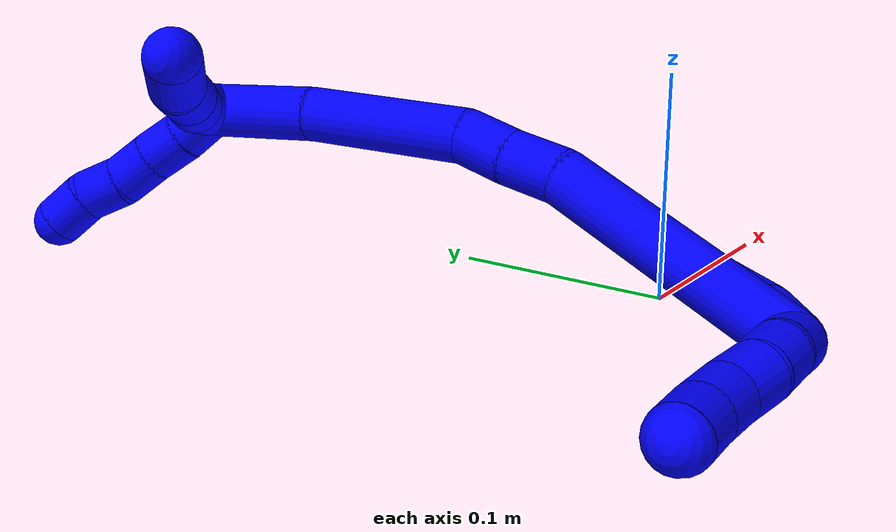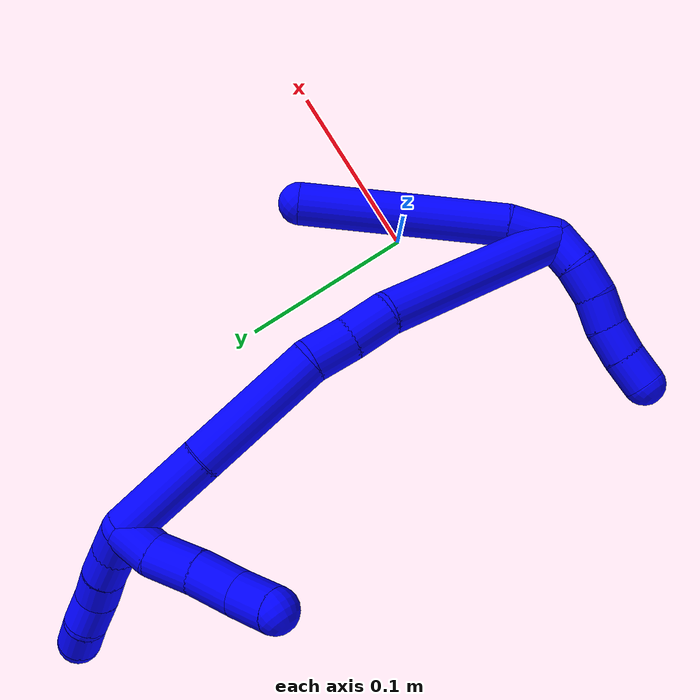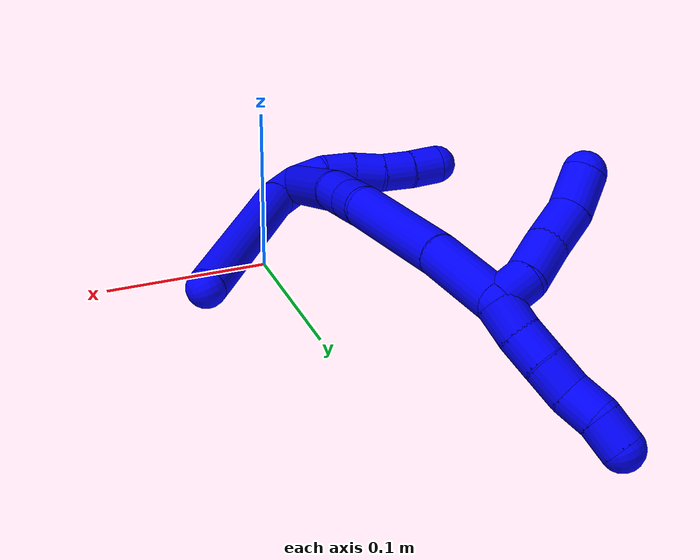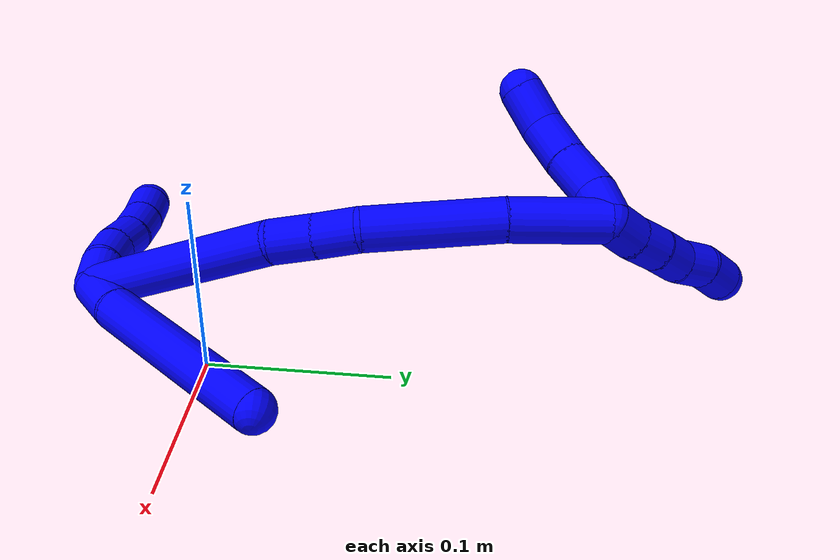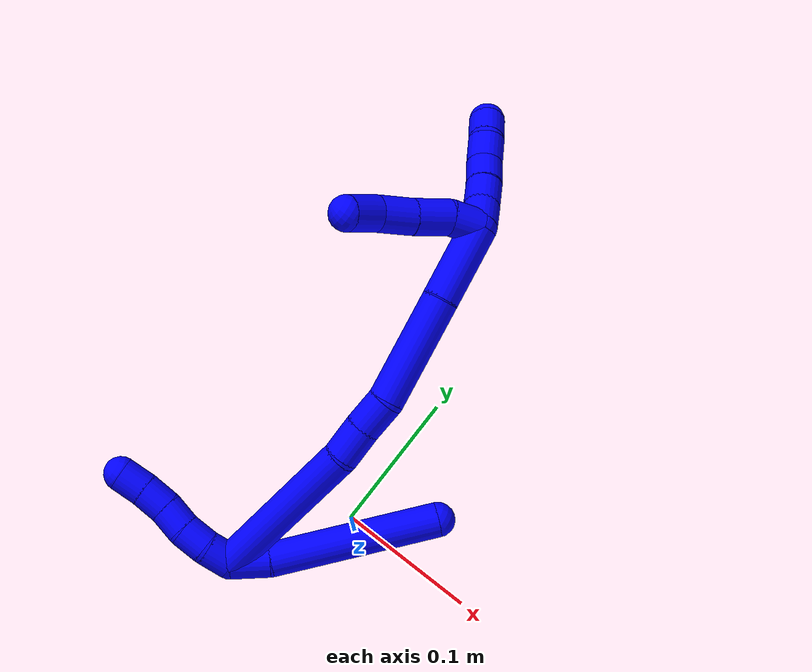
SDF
<sdf version="1.7">
 <world name="default">
  <model name="1">
   <static>0</static>
   <link name="1">
    <collision name="collision-cylinder-e_1_2_8">
     <pose>-0.001656 0.008867 0.011129 -0.672753 -0.115869 0.040555</pose>
     <geometry><cylinder><radius>0.0125</radius><length>0.028652</length></cylinder></geometry>
     <surface>
      <friction><ode><mu>1.16</mu><mu2>1.16</mu2><slip1>0</slip1><slip2>0</slip2></ode></friction>
      <contact><ode><kp>1e+06</kp><kd>1</kd><max_vel>0</max_vel><min_depth>0.001</min_depth></ode></contact>
     </surface>
    </collision>
    <visual name="visual-cylinder-e_1_2_8">
     <pose>-0.001656 0.008867 0.011129 -0.672753 -0.115869 0.040555</pose>
     <geometry><cylinder><radius>0.0125</radius><length>0.028652</length></cylinder></geometry>
     <material><ambient>0 0 1 1</ambient></material>
    </visual>
    <collision name="collision-cylinder-e_2_8_6">
     <pose>-0.005023 0.062824 0.062822 -0.838196 -0.028199 0.012563</pose>
     <geometry><cylinder><radius>0.0125</radius><length>0.121348</length></cylinder></geometry>
     <surface>
      <friction><ode><mu>1.16</mu><mu2>1.16</mu2><slip1>0</slip1><slip2>0</slip2></ode></friction>
      <contact><ode><kp>1e+06</kp><kd>1</kd><max_vel>0</max_vel><min_depth>0.001</min_depth></ode></contact>
     </surface>
    </collision>
    <visual name="visual-cylinder-e_2_8_6">
     <pose>-0.005023 0.062824 0.062822 -0.838196 -0.028199 0.012563</pose>
     <geometry><cylinder><radius>0.0125</radius><length>0.121348</length></cylinder></geometry>
     <material><ambient>0 0 1 1</ambient></material>
    </visual>
    <collision name="collision-cylinder-e_1_2_9">
     <pose>0.000923 -0.000393 -0.00995 3.10207 0.092385 2.33346</pose>
     <geometry><cylinder><radius>0.0125</radius><length>0.02</length></cylinder></geometry>
     <surface>
      <friction><ode><mu>1.16</mu><mu2>1.16</mu2><slip1>0</slip1><slip2>0</slip2></ode></friction>
      <contact><ode><kp>1e+06</kp><kd>1</kd><max_vel>0</max_vel><min_depth>0.001</min_depth></ode></contact>
     </surface>
    </collision>
    <visual name="visual-cylinder-e_1_2_9">
     <pose>0.000923 -0.000393 -0.00995 3.10207 0.092385 2.33346</pose>
     <geometry><cylinder><radius>0.0125</radius><length>0.02</length></cylinder></geometry>
     <material><ambient>0 0 1 1</ambient></material>
    </visual>
    <collision name="collision-cylinder-e_2_9_10">
     <pose>0.004962 -0.000444 -0.029395 -3.1055 0.316945 -2.91666</pose>
     <geometry><cylinder><radius>0.0125</radius><length>0.02</length></cylinder></geometry>
     <surface>
      <friction><ode><mu>1.16</mu><mu2>1.16</mu2><slip1>0</slip1><slip2>0</slip2></ode></friction>
      <contact><ode><kp>1e+06</kp><kd>1</kd><max_vel>0</max_vel><min_depth>0.001</min_depth></ode></contact>
     </surface>
    </collision>
    <visual name="visual-cylinder-e_2_9_10">
     <pose>0.004962 -0.000444 -0.029395 -3.1055 0.316945 -2.91666</pose>
     <geometry><cylinder><radius>0.0125</radius><length>0.02</length></cylinder></geometry>
     <material><ambient>0 0 1 1</ambient></material>
    </visual>
    <collision name="collision-cylinder-e_3_10_11">
     <pose>0.012155 0.001974 -0.047783 -2.91229 0.419894 -2.15066</pose>
     <geometry><cylinder><radius>0.0125</radius><length>0.02</length></cylinder></geometry>
     <surface>
      <friction><ode><mu>1.16</mu><mu2>1.16</mu2><slip1>0</slip1><slip2>0</slip2></ode></friction>
      <contact><ode><kp>1e+06</kp><kd>1</kd><max_vel>0</max_vel><min_depth>0.001</min_depth></ode></contact>
     </surface>
    </collision>
    <visual name="visual-cylinder-e_3_10_11">
     <pose>0.012155 0.001974 -0.047783 -2.91229 0.419894 -2.15066</pose>
     <geometry><cylinder><radius>0.0125</radius><length>0.02</length></cylinder></geometry>
     <material><ambient>0 0 1 1</ambient></material>
    </visual>
    <collision name="collision-cylinder-e_4_11_12">
     <pose>0.019177 0.004698 -0.06621 -3.07372 0.298952 -2.69815</pose>
     <geometry><cylinder><radius>0.0125</radius><length>0.02</length></cylinder></geometry>
     <surface>
      <friction><ode><mu>1.16</mu><mu2>1.16</mu2><slip1>0</slip1><slip2>0</slip2></ode></friction>
      <contact><ode><kp>1e+06</kp><kd>1</kd><max_vel>0</max_vel><min_depth>0.001</min_depth></ode></contact>
     </surface>
    </collision>
    <visual name="visual-cylinder-e_4_11_12">
     <pose>0.019177 0.004698 -0.06621 -3.07372 0.298952 -2.69815</pose>
     <geometry><cylinder><radius>0.0125</radius><length>0.02</length></cylinder></geometry>
     <material><ambient>0 0 1 1</ambient></material>
    </visual>
    <collision name="collision-cylinder-e_5_12_5">
     <pose>0.024532 0.005143 -0.085447 3.1206 0.243405 2.97039</pose>
     <geometry><cylinder><radius>0.0125</radius><length>0.02</length></cylinder></geometry>
     <surface>
      <friction><ode><mu>1.16</mu><mu2>1.16</mu2><slip1>0</slip1><slip2>0</slip2></ode></friction>
      <contact><ode><kp>1e+06</kp><kd>1</kd><max_vel>0</max_vel><min_depth>0.001</min_depth></ode></contact>
     </surface>
    </collision>
    <visual name="visual-cylinder-e_5_12_5">
     <pose>0.024532 0.005143 -0.085447 3.1206 0.243405 2.97039</pose>
     <geometry><cylinder><radius>0.0125</radius><length>0.02</length></cylinder></geometry>
     <material><ambient>0 0 1 1</ambient></material>
    </visual>
    <collision name="collision-cylinder-e_1_2_13">
     <pose>-0.015134 0.056591 0.005317 -1.47711 -0.260215 0.23714</pose>
     <geometry><cylinder><radius>0.0125</radius><length>0.11764</length></cylinder></geometry>
     <surface>
      <friction><ode><mu>1.16</mu><mu2>1.16</mu2><slip1>0</slip1><slip2>0</slip2></ode></friction>
      <contact><ode><kp>1e+06</kp><kd>1</kd><max_vel>0</max_vel><min_depth>0.001</min_depth></ode></contact>
     </surface>
    </collision>
    <visual name="visual-cylinder-e_1_2_13">
     <pose>-0.015134 0.056591 0.005317 -1.47711 -0.260215 0.23714</pose>
     <geometry><cylinder><radius>0.0125</radius><length>0.11764</length></cylinder></geometry>
     <material><ambient>0 0 1 1</ambient></material>
    </visual>
    <collision name="collision-cylinder-e_2_13_14">
     <pose>-0.030697 0.125929 0.010718 -1.56423 -0.033676 0.033456</pose>
     <geometry><cylinder><radius>0.0125</radius><length>0.025509</length></cylinder></geometry>
     <surface>
      <friction><ode><mu>1.16</mu><mu2>1.16</mu2><slip1>0</slip1><slip2>0</slip2></ode></friction>
      <contact><ode><kp>1e+06</kp><kd>1</kd><max_vel>0</max_vel><min_depth>0.001</min_depth></ode></contact>
     </surface>
    </collision>
    <visual name="visual-cylinder-e_2_13_14">
     <pose>-0.030697 0.125929 0.010718 -1.56423 -0.033676 0.033456</pose>
     <geometry><cylinder><radius>0.0125</radius><length>0.025509</length></cylinder></geometry>
     <material><ambient>0 0 1 1</ambient></material>
    </visual>
    <collision name="collision-cylinder-e_3_14_15">
     <pose>-0.032365 0.150869 0.011368 -1.52444 -0.101082 0.096508</pose>
     <geometry><cylinder><radius>0.0125</radius><length>0.024539</length></cylinder></geometry>
     <surface>
      <friction><ode><mu>1.16</mu><mu2>1.16</mu2><slip1>0</slip1><slip2>0</slip2></ode></friction>
      <contact><ode><kp>1e+06</kp><kd>1</kd><max_vel>0</max_vel><min_depth>0.001</min_depth></ode></contact>
     </surface>
    </collision>
    <visual name="visual-cylinder-e_3_14_15">
     <pose>-0.032365 0.150869 0.011368 -1.52444 -0.101082 0.096508</pose>
     <geometry><cylinder><radius>0.0125</radius><length>0.024539</length></cylinder></geometry>
     <material><ambient>0 0 1 1</ambient></material>
    </visual>
    <collision name="collision-cylinder-e_4_15_16">
     <pose>-0.027688 0.200886 0.008234 -1.66828 0.154391 -0.170154</pose>
     <geometry><cylinder><radius>0.0125</radius><length>0.076922</length></cylinder></geometry>
     <surface>
      <friction><ode><mu>1.16</mu><mu2>1.16</mu2><slip1>0</slip1><slip2>0</slip2></ode></friction>
      <contact><ode><kp>1e+06</kp><kd>1</kd><max_vel>0</max_vel><min_depth>0.001</min_depth></ode></contact>
     </surface>
    </collision>
    <visual name="visual-cylinder-e_4_15_16">
     <pose>-0.027688 0.200886 0.008234 -1.66828 0.154391 -0.170154</pose>
     <geometry><cylinder><radius>0.0125</radius><length>0.076922</length></cylinder></geometry>
     <material><ambient>0 0 1 1</ambient></material>
    </visual>
    <collision name="collision-cylinder-e_5_16_1">
     <pose>-0.015101 0.265515 0.002552 -1.64466 0.243337 -0.261804</pose>
     <geometry><cylinder><radius>0.0125</radius><length>0.05539</length></cylinder></geometry>
     <surface>
      <friction><ode><mu>1.16</mu><mu2>1.16</mu2><slip1>0</slip1><slip2>0</slip2></ode></friction>
      <contact><ode><kp>1e+06</kp><kd>1</kd><max_vel>0</max_vel><min_depth>0.001</min_depth></ode></contact>
     </surface>
    </collision>
    <visual name="visual-cylinder-e_5_16_1">
     <pose>-0.015101 0.265515 0.002552 -1.64466 0.243337 -0.261804</pose>
     <geometry><cylinder><radius>0.0125</radius><length>0.05539</length></cylinder></geometry>
     <material><ambient>0 0 1 1</ambient></material>
    </visual>
    <collision name="collision-cylinder-e_1_1_17">
     <pose>-0.009179 0.289448 -0.009894 2.87365 -0.069121 -0.502219</pose>
     <geometry><cylinder><radius>0.0125</radius><length>0.021751</length></cylinder></geometry>
     <surface>
      <friction><ode><mu>1.16</mu><mu2>1.16</mu2><slip1>0</slip1><slip2>0</slip2></ode></friction>
      <contact><ode><kp>1e+06</kp><kd>1</kd><max_vel>0</max_vel><min_depth>0.001</min_depth></ode></contact>
     </surface>
    </collision>
    <visual name="visual-cylinder-e_1_1_17">
     <pose>-0.009179 0.289448 -0.009894 2.87365 -0.069121 -0.502219</pose>
     <geometry><cylinder><radius>0.0125</radius><length>0.021751</length></cylinder></geometry>
     <material><ambient>0 0 1 1</ambient></material>
    </visual>
    <collision name="collision-cylinder-e_2_17_18">
     <pose>-0.012822 0.279815 -0.031559 2.59858 -0.217505 -0.747546</pose>
     <geometry><cylinder><radius>0.0125</radius><length>0.0268</length></cylinder></geometry>
     <surface>
      <friction><ode><mu>1.16</mu><mu2>1.16</mu2><slip1>0</slip1><slip2>0</slip2></ode></friction>
      <contact><ode><kp>1e+06</kp><kd>1</kd><max_vel>0</max_vel><min_depth>0.001</min_depth></ode></contact>
     </surface>
    </collision>
    <visual name="visual-cylinder-e_2_17_18">
     <pose>-0.012822 0.279815 -0.031559 2.59858 -0.217505 -0.747546</pose>
     <geometry><cylinder><radius>0.0125</radius><length>0.0268</length></cylinder></geometry>
     <material><ambient>0 0 1 1</ambient></material>
    </visual>
    <collision name="collision-cylinder-e_3_18_19">
     <pose>-0.01872 0.267329 -0.054286 2.6806 -0.229504 -0.91309</pose>
     <geometry><cylinder><radius>0.0125</radius><length>0.026431</length></cylinder></geometry>
     <surface>
      <friction><ode><mu>1.16</mu><mu2>1.16</mu2><slip1>0</slip1><slip2>0</slip2></ode></friction>
      <contact><ode><kp>1e+06</kp><kd>1</kd><max_vel>0</max_vel><min_depth>0.001</min_depth></ode></contact>
     </surface>
    </collision>
    <visual name="visual-cylinder-e_3_18_19">
     <pose>-0.01872 0.267329 -0.054286 2.6806 -0.229504 -0.91309</pose>
     <geometry><cylinder><radius>0.0125</radius><length>0.026431</length></cylinder></geometry>
     <material><ambient>0 0 1 1</ambient></material>
    </visual>
    <collision name="collision-cylinder-e_4_19_4">
     <pose>-0.028108 0.256656 -0.075365 2.66368 -0.535345 -1.68901</pose>
     <geometry><cylinder><radius>0.0125</radius><length>0.025018</length></cylinder></geometry>
     <surface>
      <friction><ode><mu>1.16</mu><mu2>1.16</mu2><slip1>0</slip1><slip2>0</slip2></ode></friction>
      <contact><ode><kp>1e+06</kp><kd>1</kd><max_vel>0</max_vel><min_depth>0.001</min_depth></ode></contact>
     </surface>
    </collision>
    <visual name="visual-cylinder-e_4_19_4">
     <pose>-0.028108 0.256656 -0.075365 2.66368 -0.535345 -1.68901</pose>
     <geometry><cylinder><radius>0.0125</radius><length>0.025018</length></cylinder></geometry>
     <material><ambient>0 0 1 1</ambient></material>
    </visual>
    <collision name="collision-cylinder-e_1_1_20">
     <pose>-0.000315 0.298079 -0.000439 -1.74388 0.946374 -1.0944</pose>
     <geometry><cylinder><radius>0.0125</radius><length>0.02</length></cylinder></geometry>
     <surface>
      <friction><ode><mu>1.16</mu><mu2>1.16</mu2><slip1>0</slip1><slip2>0</slip2></ode></friction>
      <contact><ode><kp>1e+06</kp><kd>1</kd><max_vel>0</max_vel><min_depth>0.001</min_depth></ode></contact>
     </surface>
    </collision>
    <visual name="visual-cylinder-e_1_1_20">
     <pose>-0.000315 0.298079 -0.000439 -1.74388 0.946374 -1.0944</pose>
     <geometry><cylinder><radius>0.0125</radius><length>0.02</length></cylinder></geometry>
     <material><ambient>0 0 1 1</ambient></material>
    </visual>
    <collision name="collision-cylinder-e_2_20_21">
     <pose>0.015282 0.310242 -0.003175 -1.83468 0.845577 -1.06252</pose>
     <geometry><cylinder><radius>0.0125</radius><length>0.02</length></cylinder></geometry>
     <surface>
      <friction><ode><mu>1.16</mu><mu2>1.16</mu2><slip1>0</slip1><slip2>0</slip2></ode></friction>
      <contact><ode><kp>1e+06</kp><kd>1</kd><max_vel>0</max_vel><min_depth>0.001</min_depth></ode></contact>
     </surface>
    </collision>
    <visual name="visual-cylinder-e_2_20_21">
     <pose>0.015282 0.310242 -0.003175 -1.83468 0.845577 -1.06252</pose>
     <geometry><cylinder><radius>0.0125</radius><length>0.02</length></cylinder></geometry>
     <material><ambient>0 0 1 1</ambient></material>
    </visual>
    <collision name="collision-cylinder-e_3_21_22">
     <pose>0.030708 0.32236 -0.006968 -1.9171 0.917765 -1.22617</pose>
     <geometry><cylinder><radius>0.0125</radius><length>0.02</length></cylinder></geometry>
     <surface>
      <friction><ode><mu>1.16</mu><mu2>1.16</mu2><slip1>0</slip1><slip2>0</slip2></ode></friction>
      <contact><ode><kp>1e+06</kp><kd>1</kd><max_vel>0</max_vel><min_depth>0.001</min_depth></ode></contact>
     </surface>
    </collision>
    <visual name="visual-cylinder-e_3_21_22">
     <pose>0.030708 0.32236 -0.006968 -1.9171 0.917765 -1.22617</pose>
     <geometry><cylinder><radius>0.0125</radius><length>0.02</length></cylinder></geometry>
     <material><ambient>0 0 1 1</ambient></material>
    </visual>
    <collision name="collision-cylinder-e_4_22_23">
     <pose>0.044933 0.335307 -0.011899 -1.94853 0.679385 -0.95969</pose>
     <geometry><cylinder><radius>0.0125</radius><length>0.02</length></cylinder></geometry>
     <surface>
      <friction><ode><mu>1.16</mu><mu2>1.16</mu2><slip1>0</slip1><slip2>0</slip2></ode></friction>
      <contact><ode><kp>1e+06</kp><kd>1</kd><max_vel>0</max_vel><min_depth>0.001</min_depth></ode></contact>
     </surface>
    </collision>
    <visual name="visual-cylinder-e_4_22_23">
     <pose>0.044933 0.335307 -0.011899 -1.94853 0.679385 -0.95969</pose>
     <geometry><cylinder><radius>0.0125</radius><length>0.02</length></cylinder></geometry>
     <material><ambient>0 0 1 1</ambient></material>
    </visual>
    <collision name="collision-cylinder-e_5_23_3">
     <pose>0.059455 0.347973 -0.016375 -1.85819 0.968189 -1.22646</pose>
     <geometry><cylinder><radius>0.0125</radius><length>0.02</length></cylinder></geometry>
     <surface>
      <friction><ode><mu>1.16</mu><mu2>1.16</mu2><slip1>0</slip1><slip2>0</slip2></ode></friction>
      <contact><ode><kp>1e+06</kp><kd>1</kd><max_vel>0</max_vel><min_depth>0.001</min_depth></ode></contact>
     </surface>
    </collision>
    <visual name="visual-cylinder-e_5_23_3">
     <pose>0.059455 0.347973 -0.016375 -1.85819 0.968189 -1.22646</pose>
     <geometry><cylinder><radius>0.0125</radius><length>0.02</length></cylinder></geometry>
     <material><ambient>0 0 1 1</ambient></material>
    </visual>
    <collision name="collision-sphere-3">
     <pose>0.067694 0.353409 -0.017982 0 -0 0</pose>
     <geometry><sphere><radius>0.0125</radius></sphere></geometry>
     <surface>
      <friction><ode><mu>1.16</mu><mu2>1.16</mu2><slip1>0</slip1><slip2>0</slip2></ode></friction>
      <contact><ode><kp>1e+06</kp><kd>1</kd><max_vel>0</max_vel><min_depth>0.001</min_depth></ode></contact>
     </surface>
    </collision>
    <visual name="visual-sphere-3">
     <pose>0.067694 0.353409 -0.017982 0 -0 0</pose>
     <geometry><sphere><radius>0.0125</radius></sphere></geometry>
     <material><ambient>0 0 1 1</ambient></material>
    </visual>
    <collision name="collision-sphere-23">
     <pose>0.051216 0.342538 -0.014769 0 -0 0</pose>
     <geometry><sphere><radius>0.0125</radius></sphere></geometry>
     <surface>
      <friction><ode><mu>1.16</mu><mu2>1.16</mu2><slip1>0</slip1><slip2>0</slip2></ode></friction>
      <contact><ode><kp>1e+06</kp><kd>1</kd><max_vel>0</max_vel><min_depth>0.001</min_depth></ode></contact>
     </surface>
    </collision>
    <visual name="visual-sphere-23">
     <pose>0.051216 0.342538 -0.014769 0 -0 0</pose>
     <geometry><sphere><radius>0.0125</radius></sphere></geometry>
     <material><ambient>0 0 1 1</ambient></material>
    </visual>
    <collision name="collision-sphere-22">
     <pose>0.03865 0.328075 -0.00903 0 -0 0</pose>
     <geometry><sphere><radius>0.0125</radius></sphere></geometry>
     <surface>
      <friction><ode><mu>1.16</mu><mu2>1.16</mu2><slip1>0</slip1><slip2>0</slip2></ode></friction>
      <contact><ode><kp>1e+06</kp><kd>1</kd><max_vel>0</max_vel><min_depth>0.001</min_depth></ode></contact>
     </surface>
    </collision>
    <visual name="visual-sphere-22">
     <pose>0.03865 0.328075 -0.00903 0 -0 0</pose>
     <geometry><sphere><radius>0.0125</radius></sphere></geometry>
     <material><ambient>0 0 1 1</ambient></material>
    </visual>
    <collision name="collision-sphere-21">
     <pose>0.022765 0.316645 -0.004906 0 -0 0</pose>
     <geometry><sphere><radius>0.0125</radius></sphere></geometry>
     <surface>
      <friction><ode><mu>1.16</mu><mu2>1.16</mu2><slip1>0</slip1><slip2>0</slip2></ode></friction>
      <contact><ode><kp>1e+06</kp><kd>1</kd><max_vel>0</max_vel><min_depth>0.001</min_depth></ode></contact>
     </surface>
    </collision>
    <visual name="visual-sphere-21">
     <pose>0.022765 0.316645 -0.004906 0 -0 0</pose>
     <geometry><sphere><radius>0.0125</radius></sphere></geometry>
     <material><ambient>0 0 1 1</ambient></material>
    </visual>
    <collision name="collision-sphere-20">
     <pose>0.007798 0.303838 -0.001445 0 -0 0</pose>
     <geometry><sphere><radius>0.0125</radius></sphere></geometry>
     <surface>
      <friction><ode><mu>1.16</mu><mu2>1.16</mu2><slip1>0</slip1><slip2>0</slip2></ode></friction>
      <contact><ode><kp>1e+06</kp><kd>1</kd><max_vel>0</max_vel><min_depth>0.001</min_depth></ode></contact>
     </surface>
    </collision>
    <visual name="visual-sphere-20">
     <pose>0.007798 0.303838 -0.001445 0 -0 0</pose>
     <geometry><sphere><radius>0.0125</radius></sphere></geometry>
     <material><ambient>0 0 1 1</ambient></material>
    </visual>
    <collision name="collision-sphere-4">
     <pose>-0.034489 0.251708 -0.084919 0 -0 0</pose>
     <geometry><sphere><radius>0.0125</radius></sphere></geometry>
     <surface>
      <friction><ode><mu>1.16</mu><mu2>1.16</mu2><slip1>0</slip1><slip2>0</slip2></ode></friction>
      <contact><ode><kp>1e+06</kp><kd>1</kd><max_vel>0</max_vel><min_depth>0.001</min_depth></ode></contact>
     </surface>
    </collision>
    <visual name="visual-sphere-4">
     <pose>-0.034489 0.251708 -0.084919 0 -0 0</pose>
     <geometry><sphere><radius>0.0125</radius></sphere></geometry>
     <material><ambient>0 0 1 1</ambient></material>
    </visual>
    <collision name="collision-sphere-11">
     <pose>0.016232 0.00405 -0.056675 0 -0 0</pose>
     <geometry><sphere><radius>0.0125</radius></sphere></geometry>
     <surface>
      <friction><ode><mu>1.16</mu><mu2>1.16</mu2><slip1>0</slip1><slip2>0</slip2></ode></friction>
      <contact><ode><kp>1e+06</kp><kd>1</kd><max_vel>0</max_vel><min_depth>0.001</min_depth></ode></contact>
     </surface>
    </collision>
    <visual name="visual-sphere-11">
     <pose>0.016232 0.00405 -0.056675 0 -0 0</pose>
     <geometry><sphere><radius>0.0125</radius></sphere></geometry>
     <material><ambient>0 0 1 1</ambient></material>
    </visual>
    <collision name="collision-sphere-10">
     <pose>0.008078 -0.000101 -0.038891 0 -0 0</pose>
     <geometry><sphere><radius>0.0125</radius></sphere></geometry>
     <surface>
      <friction><ode><mu>1.16</mu><mu2>1.16</mu2><slip1>0</slip1><slip2>0</slip2></ode></friction>
      <contact><ode><kp>1e+06</kp><kd>1</kd><max_vel>0</max_vel><min_depth>0.001</min_depth></ode></contact>
     </surface>
    </collision>
    <visual name="visual-sphere-10">
     <pose>0.008078 -0.000101 -0.038891 0 -0 0</pose>
     <geometry><sphere><radius>0.0125</radius></sphere></geometry>
     <material><ambient>0 0 1 1</ambient></material>
    </visual>
    <collision name="collision-sphere-6">
     <pose>-0.006734 0.107913 0.103385 0 -0 0</pose>
     <geometry><sphere><radius>0.0125</radius></sphere></geometry>
     <surface>
      <friction><ode><mu>1.16</mu><mu2>1.16</mu2><slip1>0</slip1><slip2>0</slip2></ode></friction>
      <contact><ode><kp>1e+06</kp><kd>1</kd><max_vel>0</max_vel><min_depth>0.001</min_depth></ode></contact>
     </surface>
    </collision>
    <visual name="visual-sphere-6">
     <pose>-0.006734 0.107913 0.103385 0 -0 0</pose>
     <geometry><sphere><radius>0.0125</radius></sphere></geometry>
     <material><ambient>0 0 1 1</ambient></material>
    </visual>
    <collision name="collision-sphere-9">
     <pose>0.001845 -0.000787 -0.019899 0 -0 0</pose>
     <geometry><sphere><radius>0.0125</radius></sphere></geometry>
     <surface>
      <friction><ode><mu>1.16</mu><mu2>1.16</mu2><slip1>0</slip1><slip2>0</slip2></ode></friction>
      <contact><ode><kp>1e+06</kp><kd>1</kd><max_vel>0</max_vel><min_depth>0.001</min_depth></ode></contact>
     </surface>
    </collision>
    <visual name="visual-sphere-9">
     <pose>0.001845 -0.000787 -0.019899 0 -0 0</pose>
     <geometry><sphere><radius>0.0125</radius></sphere></geometry>
     <material><ambient>0 0 1 1</ambient></material>
    </visual>
    <collision name="collision-sphere-2">
     <geometry><sphere><radius>0.0125</radius></sphere></geometry>
     <surface>
      <friction><ode><mu>1.16</mu><mu2>1.16</mu2><slip1>0</slip1><slip2>0</slip2></ode></friction>
      <contact><ode><kp>1e+06</kp><kd>1</kd><max_vel>0</max_vel><min_depth>0.001</min_depth></ode></contact>
     </surface>
    </collision>
    <visual name="visual-sphere-2">
     <geometry><sphere><radius>0.0125</radius></sphere></geometry>
     <material><ambient>0 0 1 1</ambient></material>
    </visual>
    <collision name="collision-sphere-19">
     <pose>-0.021726 0.261605 -0.065812 0 -0 0</pose>
     <geometry><sphere><radius>0.0125</radius></sphere></geometry>
     <surface>
      <friction><ode><mu>1.16</mu><mu2>1.16</mu2><slip1>0</slip1><slip2>0</slip2></ode></friction>
      <contact><ode><kp>1e+06</kp><kd>1</kd><max_vel>0</max_vel><min_depth>0.001</min_depth></ode></contact>
     </surface>
    </collision>
    <visual name="visual-sphere-19">
     <pose>-0.021726 0.261605 -0.065812 0 -0 0</pose>
     <geometry><sphere><radius>0.0125</radius></sphere></geometry>
     <material><ambient>0 0 1 1</ambient></material>
    </visual>
    <collision name="collision-sphere-8">
     <pose>-0.003312 0.017735 0.022259 0 -0 0</pose>
     <geometry><sphere><radius>0.0125</radius></sphere></geometry>
     <surface>
      <friction><ode><mu>1.16</mu><mu2>1.16</mu2><slip1>0</slip1><slip2>0</slip2></ode></friction>
      <contact><ode><kp>1e+06</kp><kd>1</kd><max_vel>0</max_vel><min_depth>0.001</min_depth></ode></contact>
     </surface>
    </collision>
    <visual name="visual-sphere-8">
     <pose>-0.003312 0.017735 0.022259 0 -0 0</pose>
     <geometry><sphere><radius>0.0125</radius></sphere></geometry>
     <material><ambient>0 0 1 1</ambient></material>
    </visual>
    <collision name="collision-sphere-12">
     <pose>0.022122 0.005346 -0.075744 0 -0 0</pose>
     <geometry><sphere><radius>0.0125</radius></sphere></geometry>
     <surface>
      <friction><ode><mu>1.16</mu><mu2>1.16</mu2><slip1>0</slip1><slip2>0</slip2></ode></friction>
      <contact><ode><kp>1e+06</kp><kd>1</kd><max_vel>0</max_vel><min_depth>0.001</min_depth></ode></contact>
     </surface>
    </collision>
    <visual name="visual-sphere-12">
     <pose>0.022122 0.005346 -0.075744 0 -0 0</pose>
     <geometry><sphere><radius>0.0125</radius></sphere></geometry>
     <material><ambient>0 0 1 1</ambient></material>
    </visual>
    <collision name="collision-sphere-5">
     <pose>0.026942 0.004939 -0.09515 0 -0 0</pose>
     <geometry><sphere><radius>0.0125</radius></sphere></geometry>
     <surface>
      <friction><ode><mu>1.16</mu><mu2>1.16</mu2><slip1>0</slip1><slip2>0</slip2></ode></friction>
      <contact><ode><kp>1e+06</kp><kd>1</kd><max_vel>0</max_vel><min_depth>0.001</min_depth></ode></contact>
     </surface>
    </collision>
    <visual name="visual-sphere-5">
     <pose>0.026942 0.004939 -0.09515 0 -0 0</pose>
     <geometry><sphere><radius>0.0125</radius></sphere></geometry>
     <material><ambient>0 0 1 1</ambient></material>
    </visual>
    <collision name="collision-sphere-13">
     <pose>-0.030268 0.113181 0.010635 0 -0 0</pose>
     <geometry><sphere><radius>0.0125</radius></sphere></geometry>
     <surface>
      <friction><ode><mu>1.16</mu><mu2>1.16</mu2><slip1>0</slip1><slip2>0</slip2></ode></friction>
      <contact><ode><kp>1e+06</kp><kd>1</kd><max_vel>0</max_vel><min_depth>0.001</min_depth></ode></contact>
     </surface>
    </collision>
    <visual name="visual-sphere-13">
     <pose>-0.030268 0.113181 0.010635 0 -0 0</pose>
     <geometry><sphere><radius>0.0125</radius></sphere></geometry>
     <material><ambient>0 0 1 1</ambient></material>
    </visual>
    <collision name="collision-sphere-14">
     <pose>-0.031126 0.138676 0.010802 0 -0 0</pose>
     <geometry><sphere><radius>0.0125</radius></sphere></geometry>
     <surface>
      <friction><ode><mu>1.16</mu><mu2>1.16</mu2><slip1>0</slip1><slip2>0</slip2></ode></friction>
      <contact><ode><kp>1e+06</kp><kd>1</kd><max_vel>0</max_vel><min_depth>0.001</min_depth></ode></contact>
     </surface>
    </collision>
    <visual name="visual-sphere-14">
     <pose>-0.031126 0.138676 0.010802 0 -0 0</pose>
     <geometry><sphere><radius>0.0125</radius></sphere></geometry>
     <material><ambient>0 0 1 1</ambient></material>
    </visual>
    <collision name="collision-sphere-15">
     <pose>-0.033603 0.163063 0.011933 0 -0 0</pose>
     <geometry><sphere><radius>0.0125</radius></sphere></geometry>
     <surface>
      <friction><ode><mu>1.16</mu><mu2>1.16</mu2><slip1>0</slip1><slip2>0</slip2></ode></friction>
      <contact><ode><kp>1e+06</kp><kd>1</kd><max_vel>0</max_vel><min_depth>0.001</min_depth></ode></contact>
     </surface>
    </collision>
    <visual name="visual-sphere-15">
     <pose>-0.033603 0.163063 0.011933 0 -0 0</pose>
     <geometry><sphere><radius>0.0125</radius></sphere></geometry>
     <material><ambient>0 0 1 1</ambient></material>
    </visual>
    <collision name="collision-sphere-16">
     <pose>-0.021774 0.238709 0.004535 0 -0 0</pose>
     <geometry><sphere><radius>0.0125</radius></sphere></geometry>
     <surface>
      <friction><ode><mu>1.16</mu><mu2>1.16</mu2><slip1>0</slip1><slip2>0</slip2></ode></friction>
      <contact><ode><kp>1e+06</kp><kd>1</kd><max_vel>0</max_vel><min_depth>0.001</min_depth></ode></contact>
     </surface>
    </collision>
    <visual name="visual-sphere-16">
     <pose>-0.021774 0.238709 0.004535 0 -0 0</pose>
     <geometry><sphere><radius>0.0125</radius></sphere></geometry>
     <material><ambient>0 0 1 1</ambient></material>
    </visual>
    <collision name="collision-sphere-1">
     <pose>-0.008428 0.29232 0.000568 0 -0 0</pose>
     <geometry><sphere><radius>0.0125</radius></sphere></geometry>
     <surface>
      <friction><ode><mu>1.16</mu><mu2>1.16</mu2><slip1>0</slip1><slip2>0</slip2></ode></friction>
      <contact><ode><kp>1e+06</kp><kd>1</kd><max_vel>0</max_vel><min_depth>0.001</min_depth></ode></contact>
     </surface>
    </collision>
    <visual name="visual-sphere-1">
     <pose>-0.008428 0.29232 0.000568 0 -0 0</pose>
     <geometry><sphere><radius>0.0125</radius></sphere></geometry>
     <material><ambient>0 0 1 1</ambient></material>
    </visual>
    <collision name="collision-sphere-18">
     <pose>-0.015713 0.273054 -0.042761 0 -0 0</pose>
     <geometry><sphere><radius>0.0125</radius></sphere></geometry>
     <surface>
      <friction><ode><mu>1.16</mu><mu2>1.16</mu2><slip1>0</slip1><slip2>0</slip2></ode></friction>
      <contact><ode><kp>1e+06</kp><kd>1</kd><max_vel>0</max_vel><min_depth>0.001</min_depth></ode></contact>
     </surface>
    </collision>
    <visual name="visual-sphere-18">
     <pose>-0.015713 0.273054 -0.042761 0 -0 0</pose>
     <geometry><sphere><radius>0.0125</radius></sphere></geometry>
     <material><ambient>0 0 1 1</ambient></material>
    </visual>
    <collision name="collision-sphere-17">
     <pose>-0.00993 0.286575 -0.020356 0 -0 0</pose>
     <geometry><sphere><radius>0.0125</radius></sphere></geometry>
     <surface>
      <friction><ode><mu>1.16</mu><mu2>1.16</mu2><slip1>0</slip1><slip2>0</slip2></ode></friction>
      <contact><ode><kp>1e+06</kp><kd>1</kd><max_vel>0</max_vel><min_depth>0.001</min_depth></ode></contact>
     </surface>
    </collision>
    <visual name="visual-sphere-17">
     <pose>-0.00993 0.286575 -0.020356 0 -0 0</pose>
     <geometry><sphere><radius>0.0125</radius></sphere></geometry>
     <material><ambient>0 0 1 1</ambient></material>
    </visual>
    <inertial>
     <pose>-0.005981 0.148519 -5.2e-05 0 -0 0</pose>
     <mass>0.75</mass>
     <inertia>
      <ixx>0.000366</ixx>
      <ixy>0</ixy>
      <ixz>0</ixz>
      <iyy>0.000175</iyy>
      <iyz>0</iyz>
      <izz>-0.000294</izz>
     </inertia>
    </inertial>
   </link>
   <pose>-0.048445 -0.076681 0.012782 2.55036 1.26567 2.61462</pose>
  </model>
 </world>
</sdf>
